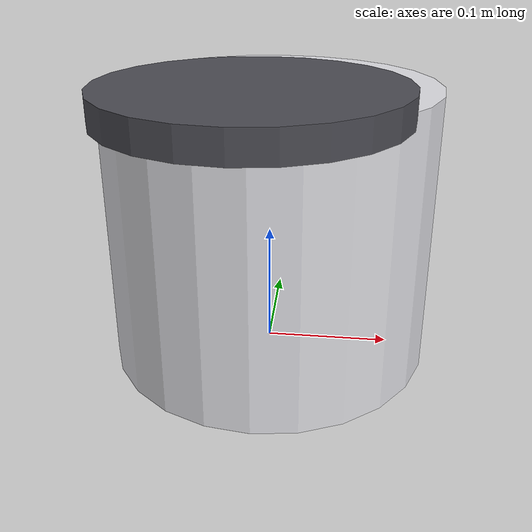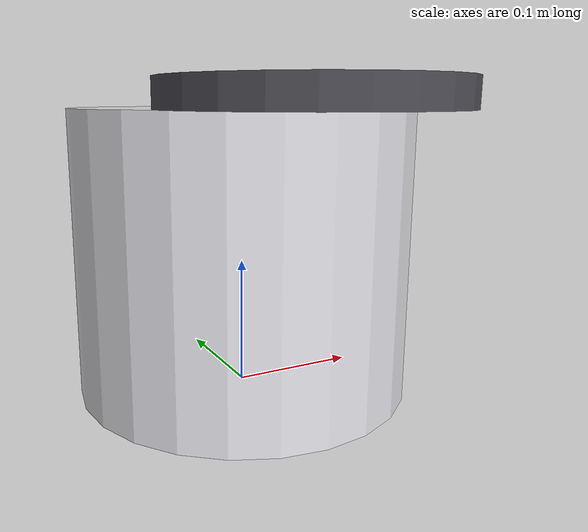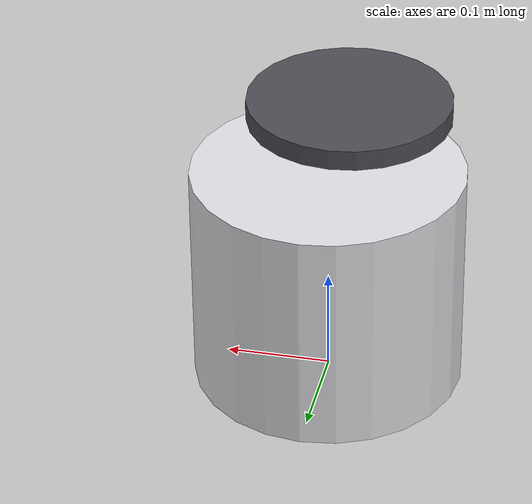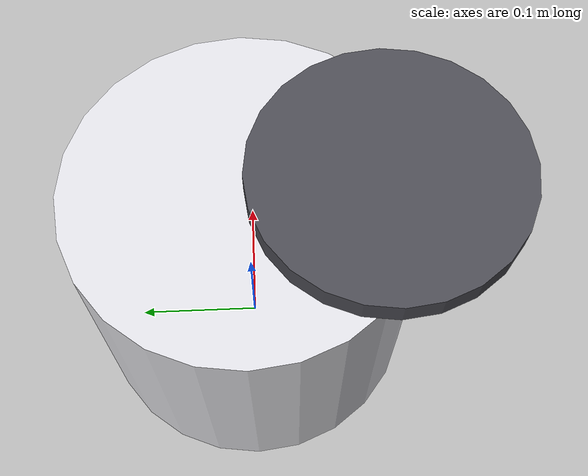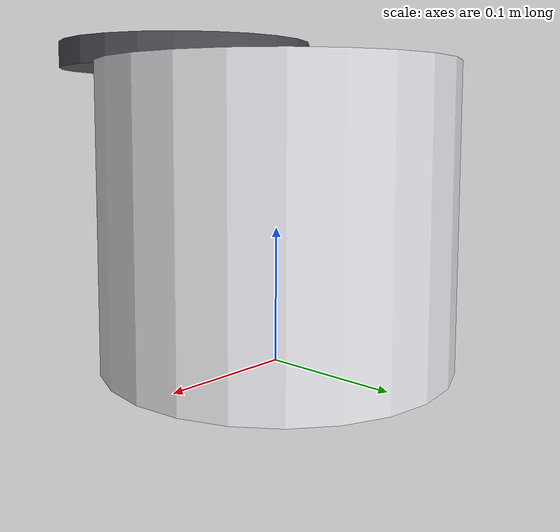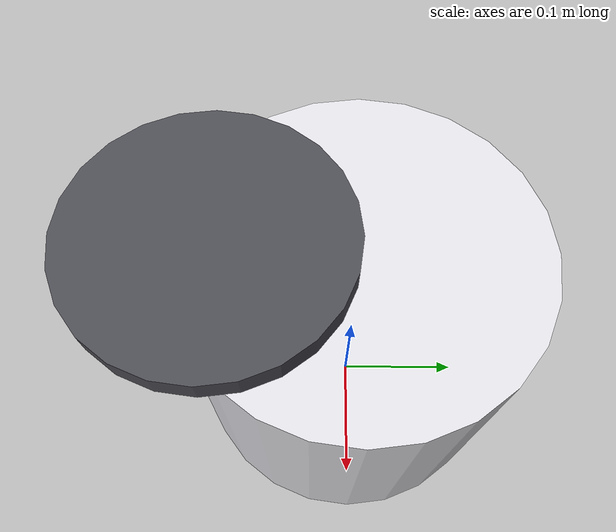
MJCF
<?xml version="1.0" encoding="utf-8"?>
<mujoco model="real_lab_western_university_centrifuge">
  <compiler angle="radian" autolimits="true"/>
  <default>
    <default class="body"><geom contype="1" conaffinity="1"/></default>
  </default>
  <worldbody>
    <body name="base">
      <geom type="cylinder" size="0.13 0.11" pos="0 0 0.11" rgba="0.88 0.88 0.9 1" class="body"/>
      <body name="lid" pos="0 -0.1 0.22">
        <joint name="lid_joint" type="hinge" axis="0 1 0" range="0 1.5" damping="1.2" frictionloss="0.5"/>
  <geom type="cylinder" size="0.1 0.01" pos="0 0 0.01" rgba="0.3 0.3 0.33 1" class="body"/>
      </body>
    </body>
  </worldbody>
</mujoco>
